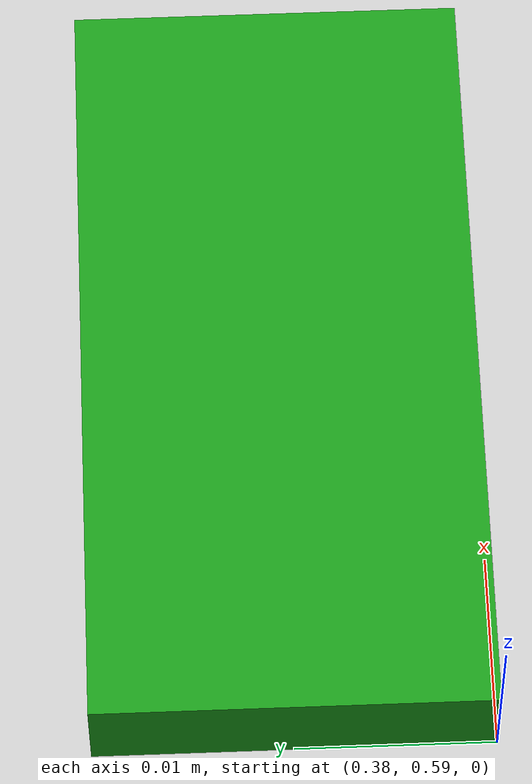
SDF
<?xml version="1.0"?>
<sdf version="1.9">
  <!-- 픽업용 임시 대상물. 기판(PCB)라고 가정한 얇은 판.
       크기: 그리퍼 최대 개방폭(0.05m)보다 좁은 0.02m(y)로 잡아 여유를 둠.
       질량이 아주 작아서 손가락 effort(20N) 대비 마찰만으로 충분히 붙잡힘. -->
  <model name="board">
    <!-- pose 속성은 ros_gz_sim create에서 이 파일을 넘겨주는 방식으로 사용하는 경우
      영항을 미치지 않는다. Launch에서 ros_gz_sim create를 호출할 때 -x/-y/-z/-R/-P/-Y
     옵션으로 위치와 자세를 지정해 주어야 한다. -->
    <pose>0.4 0.6 0.0025 0 0 0</pose>
    <link name="board_link">
      <inertial>
        <mass>0.02</mass>
        <inertia>
          <ixx>7.08e-7</ixx>
          <ixy>0</ixy>
          <ixz>0</ixz>
          <iyy>2.71e-6</iyy>
          <iyz>0</iyz>
          <izz>3.33e-6</izz>
        </inertia>
      </inertial>
      <visual name="visual">
        <geometry>
          <box><size>0.04 0.02 0.005</size></box>
        </geometry>
        <material>
          <ambient>0.1 0.6 0.1 1</ambient>
          <diffuse>0.1 0.6 0.1 1</diffuse>
        </material>
      </visual>
      <collision name="collision">
        <geometry>
          <box><size>0.04 0.02 0.005</size></box>
        </geometry>
        <surface>
          <friction>
            <ode>
              <mu>1.0</mu>
              <mu2>1.0</mu2>
            </ode>
          </friction>
        </surface>
      </collision>
    </link>
  </model>
</sdf>
